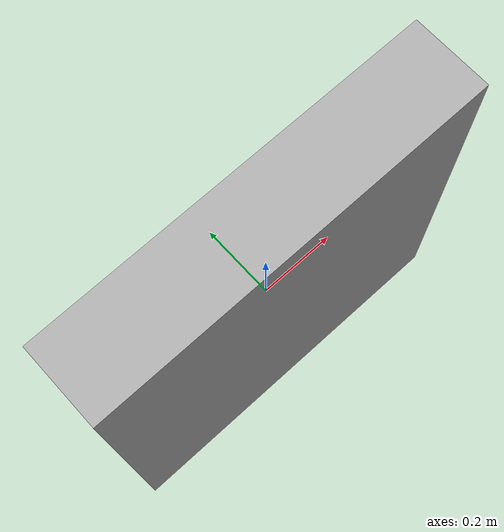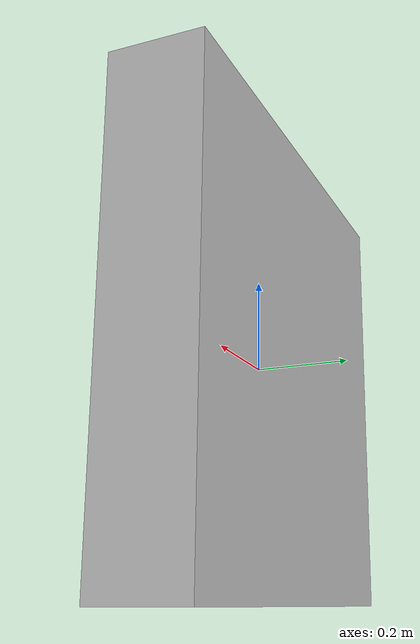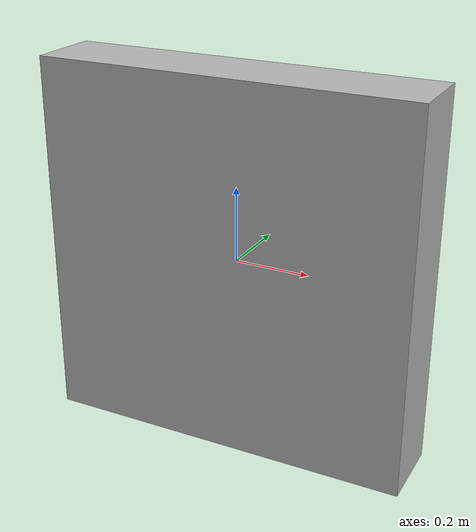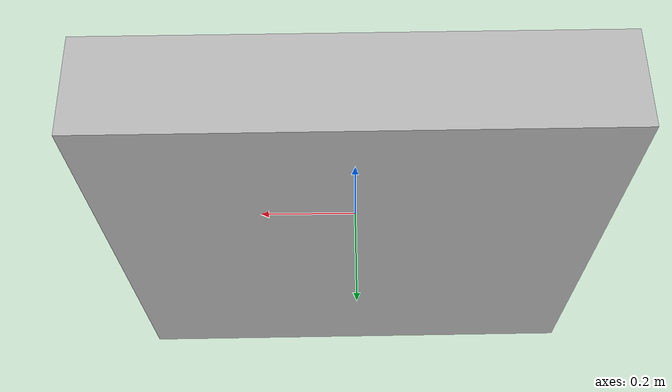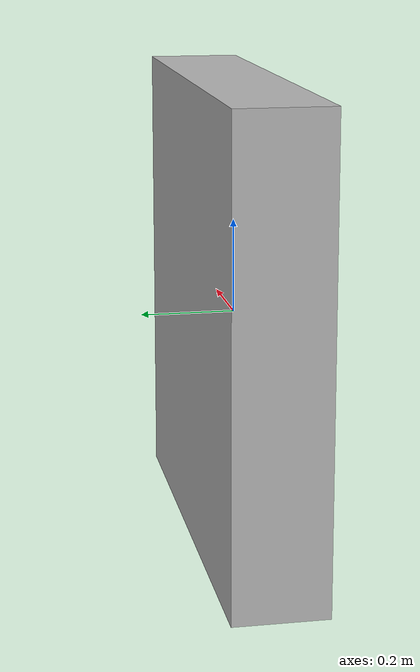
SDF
<?xml version="1.0" ?>
<sdf version="1.5">
  <model name="faps_door_box">
      <pose>0 0 0 0 0 0</pose>
      <link name="link">
        <collision name="collision">
          <geometry>
            <box>
              <size>1 0.2 1</size>
            </box>
          </geometry>
        </collision>
        <visual name="visual">
          <geometry>
            <box>
              <size>1 0.2 1</size>
            </box>
          </geometry>
        </visual>
      </link>

      <plugin name='planar_move' filename='libgazebo_ros_planar_move.so'>
        <ros>
          <namespace>/demo</namespace>
          <remapping>cmd_vel:=cmd_demo</remapping>
          <remapping>odom:=odom_demo</remapping>
        </ros>

        <update_rate>100</update_rate>
        <publish_rate>10</publish_rate>

        <publish_odom>true</publish_odom>
        <publish_odom_tf>true</publish_odom_tf>

        <odometry_frame>odom_demo</odometry_frame>
        <robot_base_frame>link</robot_base_frame>

        <covariance_x>0.0001</covariance_x>
        <covariance_y>0.0001</covariance_y>
        <covariance_yaw>0.01</covariance_yaw>
      </plugin>
  </model>
</sdf>
